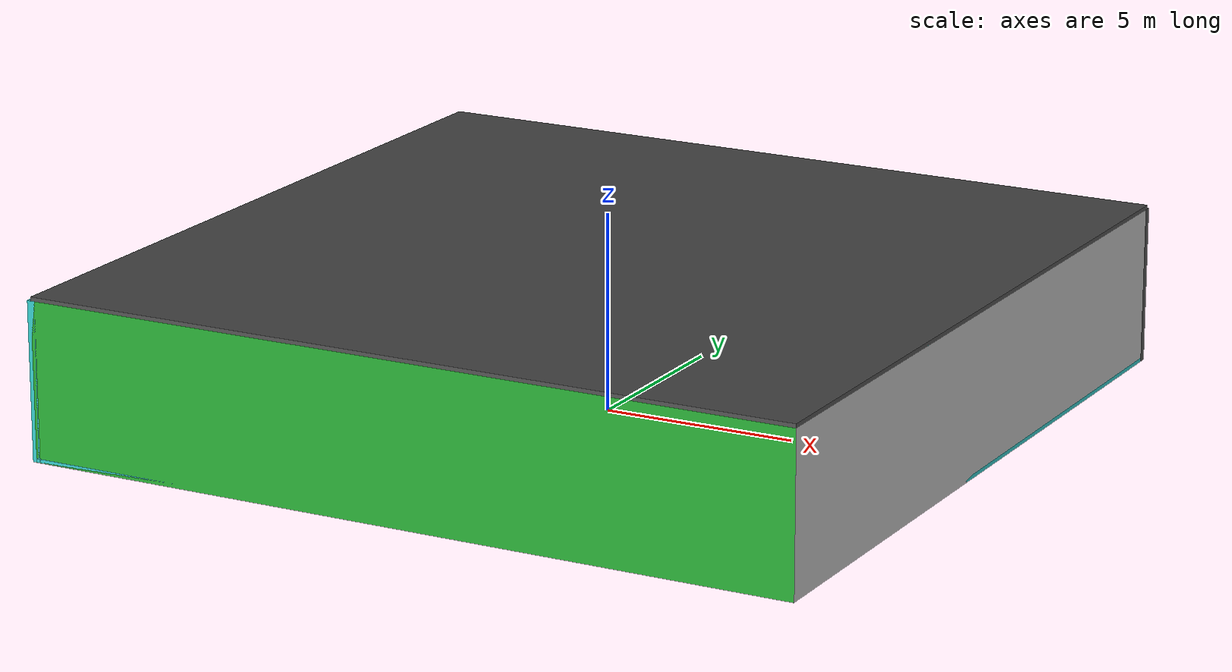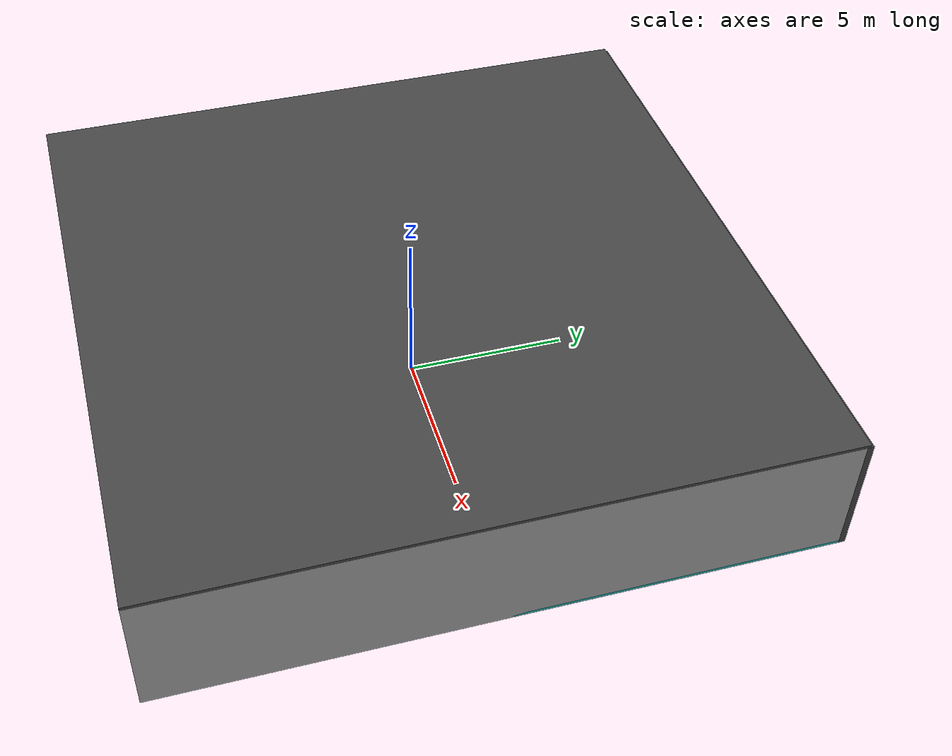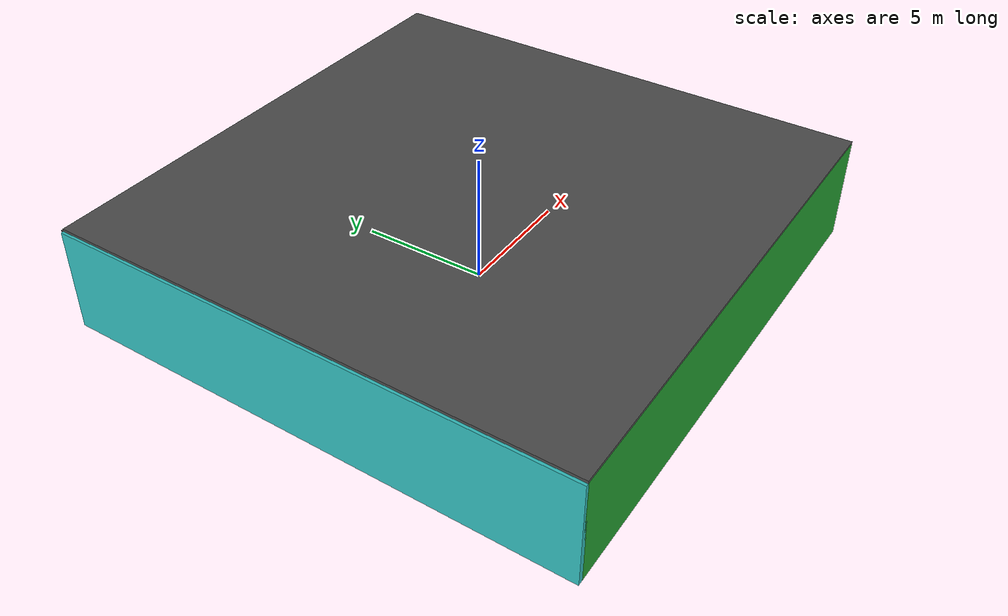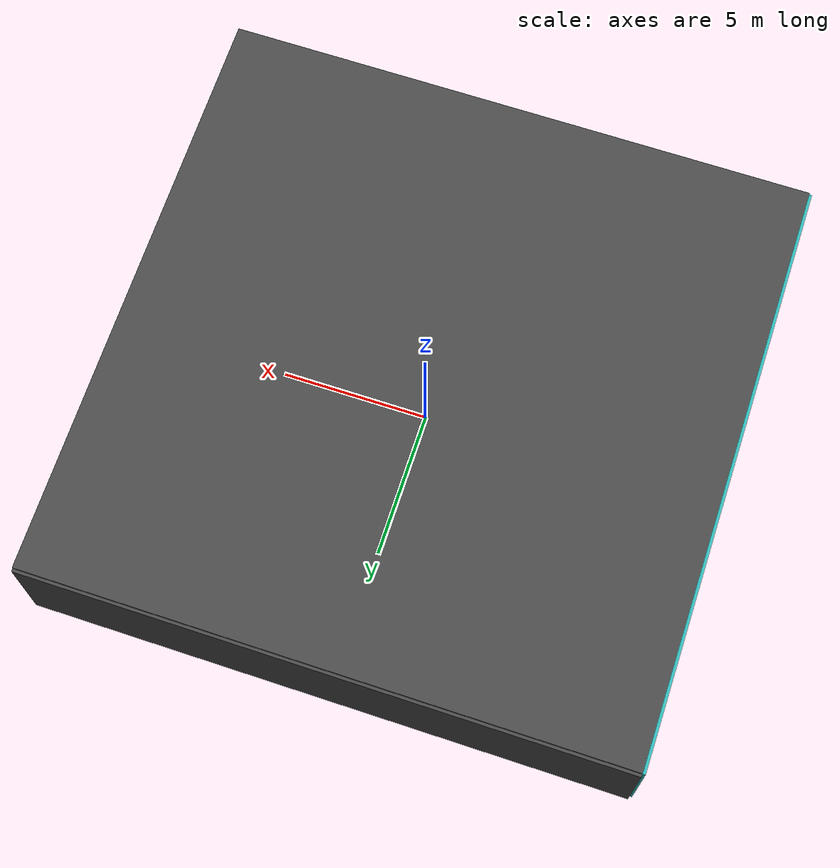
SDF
<sdf version="1.4">
 <world name="default">
  <physics type="ode">
   <max_step_size>0.001</max_step_size>
   <real_time_factor>1</real_time_factor>
   <real_time_update_rate>1000</real_time_update_rate>
   <gravity>0 0 -9.8</gravity>
  </physics>
  <scene><ambient>0.4 0.4 0.4 1</ambient><background>0.7 0.7 0.7 1</background><shadows>1</shadows></scene>
  <model name="Surrounding">
   <static>1</static>
   <link name="Ceiling">
    <collision name="Ceiling_Collision"><geometry><box><size>20 20 0.1</size></box></geometry></collision>
    <visual name="Ceiling_Visual">
     <geometry><box><size>20 20 0.1</size></box></geometry>
     <material>
      <script><uri>file://media/materials/scripts/gazebo.material</uri><name>Gazebo/Road</name></script>
     </material>
    </visual>
    <pose>0 0 4.05 0 0 0</pose>
   </link>
   <link name="Wall_South">
    <collision name="Wall_South_Collision">
     <geometry><box><size>20 0 4</size></box></geometry>
     <pose>0 0 2 0 -0 0</pose>
    </collision>
    <visual name="Wall_South_Visual">
     <pose>0 0 2 0 -0 0</pose>
     <geometry><box><size>20 0 4</size></box></geometry>
     <material>
      <script><uri>file://media/materials/scripts/gazebo.material</uri><name>Gazebo/Green</name></script>
     </material>
    </visual>
    <velocity_decay><linear>0</linear><angular>0</angular></velocity_decay>
    <pose>0 -10 0 0 -0 0</pose>
   </link>
   <link name="Wall_East">
    <collision name="Wall_21_Collision">
     <geometry><box><size>20 0 4</size></box></geometry>
     <pose>0 0 2 0 -0 0</pose>
    </collision>
    <visual name="Wall_21_Visual">
     <pose>0 0 2 0 -0 0</pose>
     <geometry><box><size>20 0 4</size></box></geometry>
     <material>
      <script><uri>file://media/materials/scripts/gazebo.material</uri><name>Gazebo/Pioneer2Body</name></script>
     </material>
    </visual>
    <velocity_decay><linear>0</linear><angular>0</angular></velocity_decay>
    <pose>10 0 0 0 -0 1.5708</pose>
   </link>
   <link name="Wall_North">
    <collision name="Wall_22_Collision">
     <geometry><box><size>20 0.2 4</size></box></geometry>
     <pose>0 0 2 0 -0 0</pose>
    </collision>
    <visual name="Wall_22_Visual">
     <pose>0 0 2 0 -0 0</pose>
     <geometry><box><size>20 0.2 4</size></box></geometry>
     <material>
      <script><uri>file://media/materials/scripts/gazebo.material</uri><name>Gazebo/Road</name></script>
     </material>
    </visual>
    <velocity_decay><linear>0</linear><angular>0</angular></velocity_decay>
    <pose>0 10 0 0 -0 0</pose>
   </link>
   <link name="Wall_West">
    <collision name="Wall_23_Collision">
     <geometry><box><size>20 0.2 4</size></box></geometry>
     <pose>0 0 2 0 -0 0</pose>
    </collision>
    <visual name="Wall_23_Visual">
     <pose>0 0 2 0 -0 0</pose>
     <geometry><box><size>20 0.2 4</size></box></geometry>
     <material>
      <script><uri>file://media/materials/scripts/gazebo.material</uri><name>Gazebo/TurquoiseGlow</name></script>
     </material>
    </visual>
    <velocity_decay><linear>0</linear><angular>0</angular></velocity_decay>
    <pose>-10 0 0 0 0 -1.5708</pose>
   </link>
   <link name="Ground_link">
    <collision name="collision">
     <pose>0 0 .05 0 -0 0</pose>
     <geometry><box><size>20 20 0.1</size></box></geometry>
    </collision>
    <visual name="visual">
     <pose>0 0 .05 0 -0 0</pose>
     <geometry><box><size>20 20 0.1</size></box></geometry>
     <material>
      <script>
       <uri>file://media/materials/scripts/gazebo.material</uri>
       <name>Gazebo/TurquoiseGlowOutline</name>
      </script>
     </material>
    </visual>
   </link>
   <static>1</static>
  </model>
  <spherical_coordinates>
   <surface_model>EARTH_WGS84</surface_model>
   <latitude_deg>0</latitude_deg>
   <longitude_deg>0</longitude_deg>
   <elevation>0</elevation>
   <heading_deg>0</heading_deg>
  </spherical_coordinates>
  <light name="lightball_0" type="diffuse">
   <diffuse>0.8 0.8 0.8 1</diffuse>
   <specular>0.2 0.2 0.2 1</specular>
   <attenuation>
    <range>100</range>
    <constant>0.7</constant>
    <linear>0.01</linear>
    <quadratic>0.001</quadratic>
   </attenuation>
   <direction>-0.5 0.1 -0.9</direction>
   <pose>-3.56212483407 -8.12317706103 0.525377030191 0 0 0</pose>
  </light>
  <light name="lightball_1" type="diffuse">
   <diffuse>0.8 0.8 0.8 1</diffuse>
   <specular>0.2 0.2 0.2 1</specular>
   <attenuation>
    <range>100</range>
    <constant>0.7</constant>
    <linear>0.01</linear>
    <quadratic>0.001</quadratic>
   </attenuation>
   <direction>-0.5 0.1 -0.9</direction>
   <pose>7.73561484133 7.7600762908 2.8371269107 0 0 0</pose>
  </light>
  <light name="lightball_2" type="diffuse">
   <diffuse>0.8 0.8 0.8 1</diffuse>
   <specular>0.2 0.2 0.2 1</specular>
   <attenuation>
    <range>100</range>
    <constant>0.7</constant>
    <linear>0.01</linear>
    <quadratic>0.001</quadratic>
   </attenuation>
   <direction>-0.5 0.1 -0.9</direction>
   <pose>5.18926851379 -7.29760920317 2.69261543173 0 0 0</pose>
  </light>
  <light name="lightball_3" type="diffuse">
   <diffuse>0.8 0.8 0.8 1</diffuse>
   <specular>0.2 0.2 0.2 1</specular>
   <attenuation>
    <range>100</range>
    <constant>0.7</constant>
    <linear>0.01</linear>
    <quadratic>0.001</quadratic>
   </attenuation>
   <direction>-0.5 0.1 -0.9</direction>
   <pose>-6.40367928697 -7.96488293327 0.867502469222 0 0 0</pose>
  </light>
  <light name="lightball_4" type="diffuse">
   <diffuse>0.8 0.8 0.8 1</diffuse>
   <specular>0.2 0.2 0.2 1</specular>
   <attenuation>
    <range>100</range>
    <constant>0.7</constant>
    <linear>0.01</linear>
    <quadratic>0.001</quadratic>
   </attenuation>
   <direction>-0.5 0.1 -0.9</direction>
   <pose>-6.85920759624 -4.68511230552 2.46579899966 0 0 0</pose>
  </light>
  <light name="lightball_5" type="diffuse">
   <diffuse>0.8 0.8 0.8 1</diffuse>
   <specular>0.2 0.2 0.2 1</specular>
   <attenuation>
    <range>100</range>
    <constant>0.7</constant>
    <linear>0.01</linear>
    <quadratic>0.001</quadratic>
   </attenuation>
   <direction>-0.5 0.1 -0.9</direction>
   <pose>-1.58540947006 9.81291408272 3.17559658518 0 0 0</pose>
  </light>
  <light name="lightball_6" type="diffuse">
   <diffuse>0.8 0.8 0.8 1</diffuse>
   <specular>0.2 0.2 0.2 1</specular>
   <attenuation>
    <range>100</range>
    <constant>0.7</constant>
    <linear>0.01</linear>
    <quadratic>0.001</quadratic>
   </attenuation>
   <direction>-0.5 0.1 -0.9</direction>
   <pose>-6.99978408581 4.35937807797 3.89383607283 0 0 0</pose>
  </light>
  <light name="lightball_7" type="diffuse">
   <diffuse>0.8 0.8 0.8 1</diffuse>
   <specular>0.2 0.2 0.2 1</specular>
   <attenuation>
    <range>100</range>
    <constant>0.7</constant>
    <linear>0.01</linear>
    <quadratic>0.001</quadratic>
   </attenuation>
   <direction>-0.5 0.1 -0.9</direction>
   <pose>2.91965006322 4.32278836618 2.24045570067 0 0 0</pose>
  </light>
  <light name="lightball_8" type="diffuse">
   <diffuse>0.8 0.8 0.8 1</diffuse>
   <specular>0.2 0.2 0.2 1</specular>
   <attenuation>
    <range>100</range>
    <constant>0.7</constant>
    <linear>0.01</linear>
    <quadratic>0.001</quadratic>
   </attenuation>
   <direction>-0.5 0.1 -0.9</direction>
   <pose>7.1722568315 0.359650167015 2.58439561864 0 0 0</pose>
  </light>
  <light name="lightball_9" type="diffuse">
   <diffuse>0.8 0.8 0.8 1</diffuse>
   <specular>0.2 0.2 0.2 1</specular>
   <attenuation>
    <range>100</range>
    <constant>0.7</constant>
    <linear>0.01</linear>
    <quadratic>0.001</quadratic>
   </attenuation>
   <direction>-0.5 0.1 -0.9</direction>
   <pose>-4.02879679427 -1.08275463105 1.83401270069 0 0 0</pose>
  </light>
  <light name="lightball_10" type="diffuse">
   <diffuse>0.8 0.8 0.8 1</diffuse>
   <specular>0.2 0.2 0.2 1</specular>
   <attenuation>
    <range>100</range>
    <constant>0.7</constant>
    <linear>0.01</linear>
    <quadratic>0.001</quadratic>
   </attenuation>
   <direction>-0.5 0.1 -0.9</direction>
   <pose>-9.44049919129 -7.5866938213 0.907346384003 0 0 0</pose>
  </light>
  <include><uri>model://cabinet</uri><pose>-4.32453970875 -0.877894085323 0 0 0 2.09774711379</pose></include>
  <include><uri>model://cabinet</uri><pose>-1.20997111672 -7.25619024788 0 0 0 2.29306033367</pose></include>
  <include>
   <uri>model://construction_cone</uri>
   <pose>5.2130521857 -3.91713914129 0 0 0 0.267297619259</pose>
  </include>
  <include>
   <uri>model://construction_cone</uri>
   <pose>8.15211116805 7.11708649578 0 0 0 0.557216371032</pose>
  </include>
 </world>
</sdf>

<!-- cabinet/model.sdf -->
<sdf version="1.5">
  <model name="cabinet">
    <static>true</static>
    <link name="cabinet_bottom_plate">
      <inertial>
        <pose>0 0 -1 0 0 0</pose>
        <inertia>
          <ixx>2.050000</ixx>
          <ixy>0</ixy>
          <ixz>0</ixz>
          <iyy>2.050000</iyy>
          <iyz>0</iyz>
          <izz>2.050000</izz>
        </inertia>
        <mass>25.000000</mass>
      </inertial>
      <collision name="cabinet_bottom_plate_geom">
        <pose>0 0 0.010000 0 0 0</pose>
        <geometry>
          <box>
            <size>0.450000 0.450000 0.020000</size>
          </box>
        </geometry>
      </collision>
      <visual name="cabinet_bottom_plate_geom_visual">
        <pose>0 0 0.010000 0 0 0</pose>
        <geometry>
          <box>
            <size>0.450000 0.450000 0.020000</size>
          </box>
        </geometry>
        <material>
          <script>
            <uri>model://media/materials/scripts/gazebo.material</uri>
            <name>Gazebo/Wood</name>
          </script>
        </material>
      </visual>
      <collision name="cabinet_bottom_plate_geom_cabinet_back_plate">
        <pose>0.235000 0 0.510000 0 0 0</pose>
        <geometry>
          <box>
            <size>0.020000 0.450000 1.020000</size>
          </box>
        </geometry>
      </collision>
      <visual name="cabinet_bottom_plate_geom_cabinet_back_plate_visual">
        <pose>0.235000 0 0.510000 0 0 0</pose>
        <geometry>
          <box>
            <size>0.020000 0.450000 1.020000</size>
          </box>
        </geometry>
        <material>
          <script>
            <uri>model://media/materials/scripts/gazebo.material</uri>
            <name>Gazebo/Wood</name>
          </script>
        </material>
      </visual>
      <collision name="cabinet_bottom_plate_geom_cabinet_left_plate">
        <pose>0 0.235000 0.510000 0 0 0</pose>
        <geometry>
          <box>
            <size>0.450000 0.020000 1.020000</size>
          </box>
        </geometry>
      </collision>
      <visual name="cabinet_bottom_plate_geom_cabinet_left_plate_visual">
        <pose>0 0.235000 0.510000 0 0 0</pose>
        <geometry>
          <box>
            <size>0.450000 0.020000 1.020000</size>
          </box>
        </geometry>
        <material>
          <script>
            <uri>model://media/materials/scripts/gazebo.material</uri>
            <name>Gazebo/Wood</name>
          </script>
        </material>
      </visual>
      <collision name="cabinet_bottom_plate_geom_cabinet_middle_plate">
        <pose>0 0 0.510000 0 0 0</pose>
        <geometry>
          <box>
            <size>0.450000 0.450000 0.020000</size>
          </box>
        </geometry>
      </collision>
      <visual name="cabinet_bottom_plate_geom_cabinet_middle_plate_visual">
        <pose>0 0 0.510000 0 0 0</pose>
        <geometry>
          <box>
            <size>0.450000 0.450000 0.020000</size>
          </box>
        </geometry>
        <material>
          <script>
            <uri>model://media/materials/scripts/gazebo.material</uri>
            <name>Gazebo/Wood</name>
          </script>
        </material>
      </visual>
      <collision name="cabinet_bottom_plate_geom_cabinet_right_plate">
        <pose>0 -0.235000 0.510000 0 0 0</pose>
        <geometry>
          <box>
            <size>0.450000 0.020000 1.020000</size>
          </box>
        </geometry>
      </collision>
      <visual name="cabinet_bottom_plate_geom_cabinet_right_plate_visual">
        <pose>0 -0.235000 0.510000 0 0 0</pose>
        <geometry>
          <box>
            <size>0.450000 0.020000 1.020000</size>
          </box>
        </geometry>
        <material>
          <script>
            <uri>model://media/materials/scripts/gazebo.material</uri>
            <name>Gazebo/Wood</name>
          </script>
        </material>
      </visual>
      <collision name="cabinet_bottom_plate_geom_cabinet_top_plate">
        <pose>0 0 1.010000 0 0 0</pose>
        <geometry>
          <box>
            <size>0.450000 0.450000 0.020000</size>
          </box>
        </geometry>
      </collision>
      <visual name="cabinet_bottom_plate_geom_cabinet_top_plate_visual">
        <pose>0 0 1.010000 0 0 0</pose>
        <geometry>
          <box>
            <size>0.450000 0.450000 0.020000</size>
          </box>
        </geometry>
        <material>
          <script>
            <uri>model://media/materials/scripts/gazebo.material</uri>
            <name>Gazebo/Wood</name>
          </script>
        </material>
      </visual>
    </link>
  </model>
</sdf>

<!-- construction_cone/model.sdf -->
<sdf version="1.5">
  <model name="Construction Cone">
    <link name="link">
      <collision name="collision">
        <geometry>
          <mesh>
            <scale>10 10 10</scale>
            <uri>file://isr-testbed/construction_cone/meshes/construction_cone.dae</uri>
          </mesh>
        </geometry>
      </collision>
      <visual name="visual">
        <geometry>
          <mesh>
            <scale>10 10 10</scale>
            <uri>file://isr-testbed/construction_cone/meshes/construction_cone.dae</uri>
          </mesh>
        </geometry>
      </visual>
    </link>
  </model>
</sdf>
